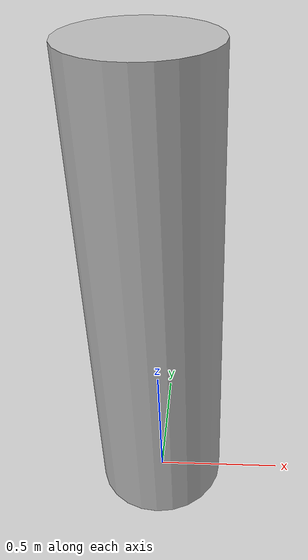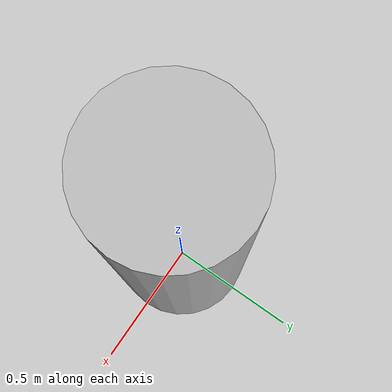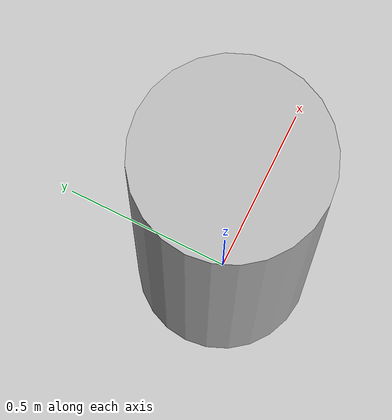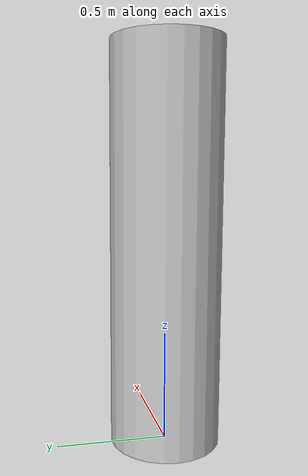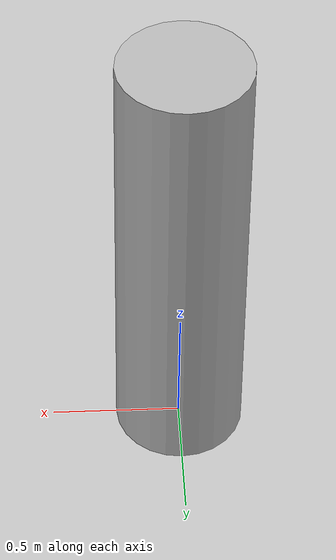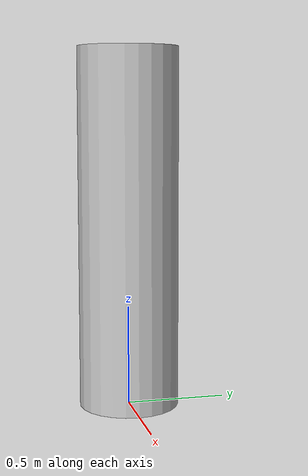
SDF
<?xml version='1.0'?>
<sdf version='1.6'>
  <model name='sliding_person'>
    <pose>0 0 0 0 0 0</pose>
    <static>false</static>

    <link name='body'>
      <inertial>
        <mass>60.0</mass>
        <inertia>
          <ixx>1.0</ixx>
          <ixy>0</ixy>
          <ixz>0</ixz>
          <iyy>1.0</iyy>
          <iyz>0</iyz>
          <izz>1.0</izz>
        </inertia>
      </inertial>

      <collision name='collision'>
        <pose>0 0 0.9 0 0 0</pose>
        <geometry>
          <cylinder>
            <radius>0.25</radius>
            <length>1.8</length>
          </cylinder>
        </geometry>
      </collision>

      <visual name='visual'>
        <pose>0 0 0.9 0 0 0</pose>
        <geometry>
          <cylinder>
            <radius>0.25</radius>
            <length>1.8</length>
          </cylinder>
        </geometry>
      </visual>
    </link>

    <plugin name="person_controller" filename="libgazebo_ros_planar_move.so">
      <commandTopic>person_vel</commandTopic>
      <odometryTopic>person_odom</odometryTopic>
      <odometryFrame>person_odom</odometryFrame>
      <odometryRate>20.0</odometryRate>
      <robotBaseFrame>body</robotBaseFrame>
    </plugin>
  </model>
</sdf>
